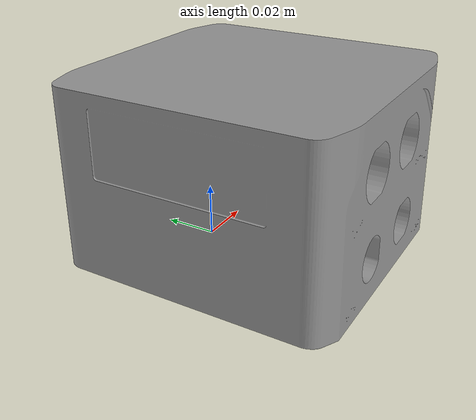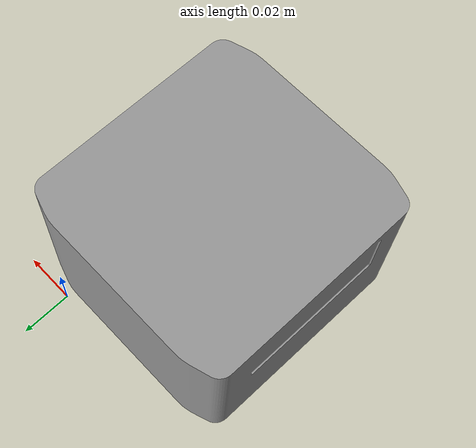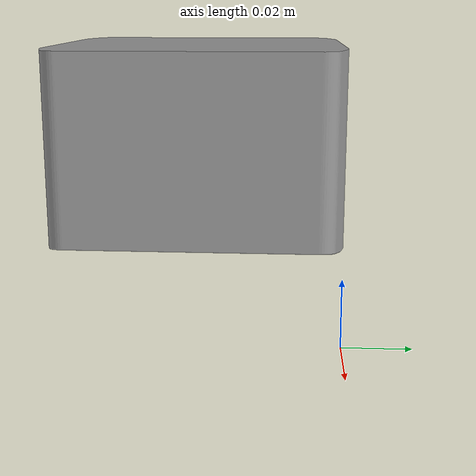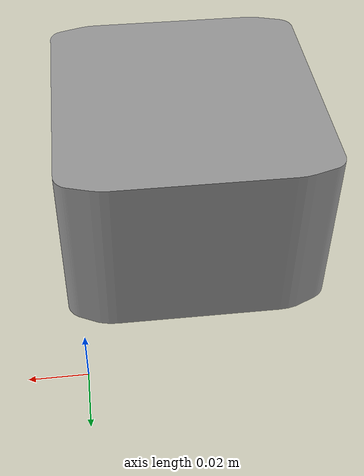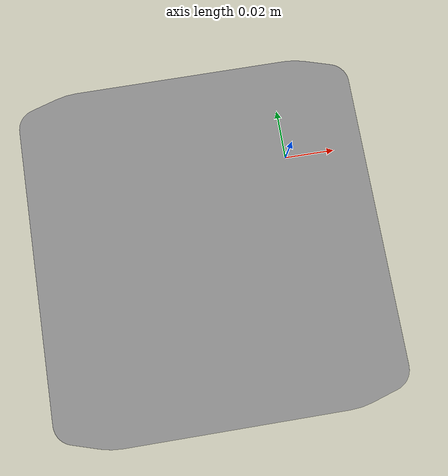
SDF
<?xml version='1.0'?>
<sdf version='1.6'>
  <model name='ekinox_ins'>
    <link name='link_0'>
      <inertial>
        <mass>0.52</mass>
        <inertia>
          <ixx>0.0866667</ixx>
          <ixy>0</ixy>
          <ixz>0</ixz>
          <iyy>0.0866667</iyy>
          <iyz>0</iyz>
          <izz>0.0866667</izz>
        </inertia>
        <pose frame=''>0 0 0 0 -0 0</pose>
      </inertial>
      <pose frame=''>-0 -0 0 3.14159 -0 0</pose>
      <gravity>1</gravity>
      <self_collide>0</self_collide>
      <kinematic>0</kinematic>
      <enable_wind>0</enable_wind>
      <visual name='visual'>
        <pose frame=''>0 0 0 0 -0 0</pose>
        <geometry>
          <mesh><uri>model://Ekinox_INS/ekinox_ins.dae</uri></mesh>
        </geometry>
        <material>
          <lighting>1</lighting>
          <script>
            <uri>file://media/materials/scripts/gazebo.material</uri>
            <name>Gazebo/Grey</name>
          </script>
          <shader type='vertex'>
            <normal_map>__default__</normal_map>
          </shader>
          <ambient>0.3 0.3 0.3 1</ambient>
          <diffuse>0.7 0.7 0.7 1</diffuse>
          <specular>0.01 0.01 0.01 1</specular>
          <emissive>0 0 0 1</emissive>
        </material>
        <transparency>0</transparency>
        <cast_shadows>1</cast_shadows>
      </visual>
      <collision name='collision'>
        <laser_retro>0</laser_retro>
        <max_contacts>10</max_contacts>
        <pose frame=''>0 0 0 0 -0 0</pose>
        <geometry>
          <mesh><uri>model://Ekinox_INS/ekinox_ins.dae</uri></mesh>
        </geometry>
        <surface>
          <friction>
            <ode>
              <mu>1</mu>
              <mu2>1</mu2>
              <fdir1>0 0 0</fdir1>
              <slip1>0</slip1>
              <slip2>0</slip2>
            </ode>
            <torsional>
              <coefficient>1</coefficient>
              <patch_radius>0</patch_radius>
              <surface_radius>0</surface_radius>
              <use_patch_radius>1</use_patch_radius>
              <ode>
                <slip>0</slip>
              </ode>
            </torsional>
          </friction>
          <bounce>
            <restitution_coefficient>0</restitution_coefficient>
            <threshold>1e+06</threshold>
          </bounce>
          <contact>
            <collide_without_contact>0</collide_without_contact>
            <collide_without_contact_bitmask>1</collide_without_contact_bitmask>
            <collide_bitmask>1</collide_bitmask>
            <ode>
              <soft_cfm>0</soft_cfm>
              <soft_erp>0.2</soft_erp>
              <kp>1e+13</kp>
              <kd>1</kd>
              <max_vel>0.01</max_vel>
              <min_depth>0</min_depth>
            </ode>
            <bullet>
              <split_impulse>1</split_impulse>
              <split_impulse_penetration_threshold>-0.01</split_impulse_penetration_threshold>
              <soft_cfm>0</soft_cfm>
              <soft_erp>0.2</soft_erp>
              <kp>1e+13</kp>
              <kd>1</kd>
            </bullet>
          </contact>
        </surface>
      </collision>
      <sensor name='ekinox_sensor' type='imu'>
	<imu>
	  <orientation_reference_frame>
	  <localization>NED</localization>
	  </orientation_reference_frame>
	  <topic>/QuadRobotIMU</topic>
	</imu>
	<always_on>1</always_on>
	<update_rate>200</update_rate>
	<visualize>1</visualize>
	<plugin name='qrINSmessge' filename ='libqrINSmessage_plugin.so'/>
      </sensor>
    </link>
    <pose>0 0 0.09 0 0 0</pose>
    <static>0</static>
    <allow_auto_disable>1</allow_auto_disable>
    <plugin name='angle_vel_test' filename='libtest_imu_plugin.so'/>
  </model>
</sdf>
